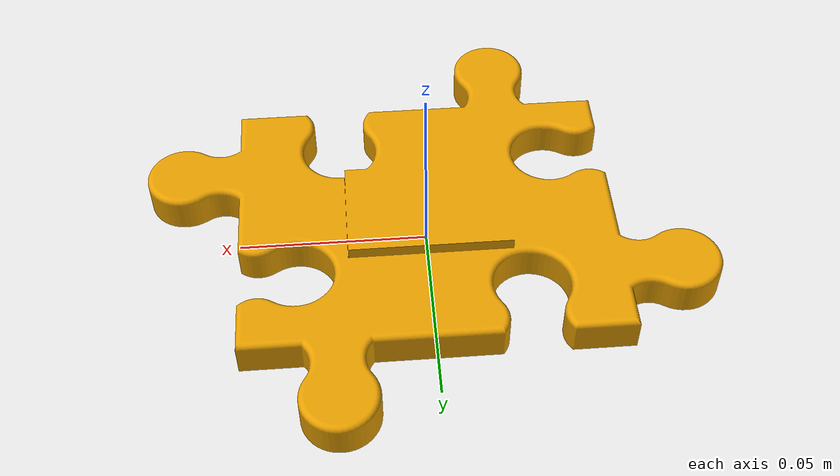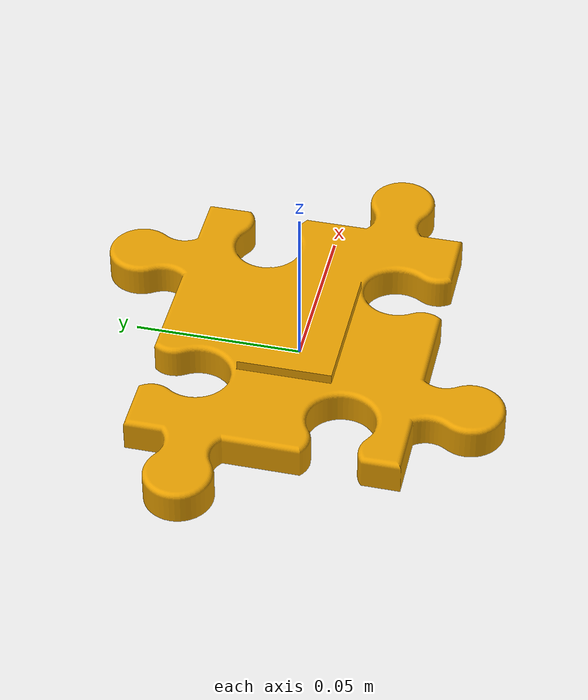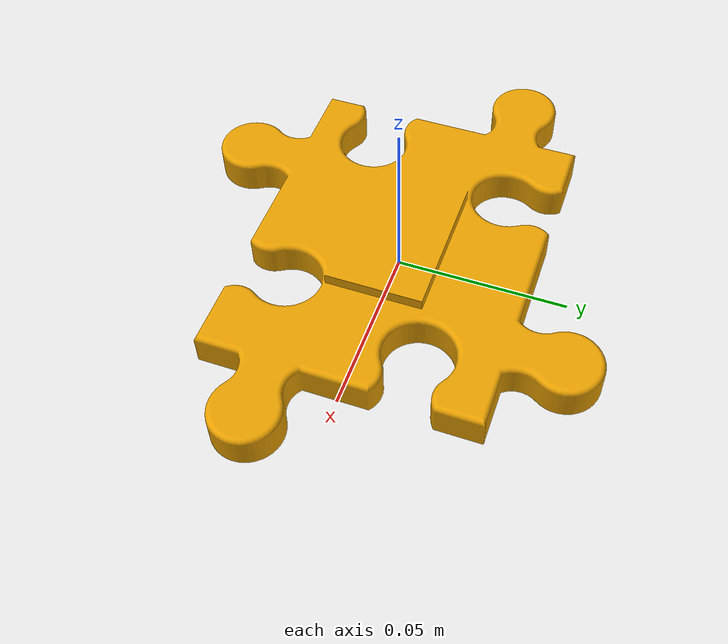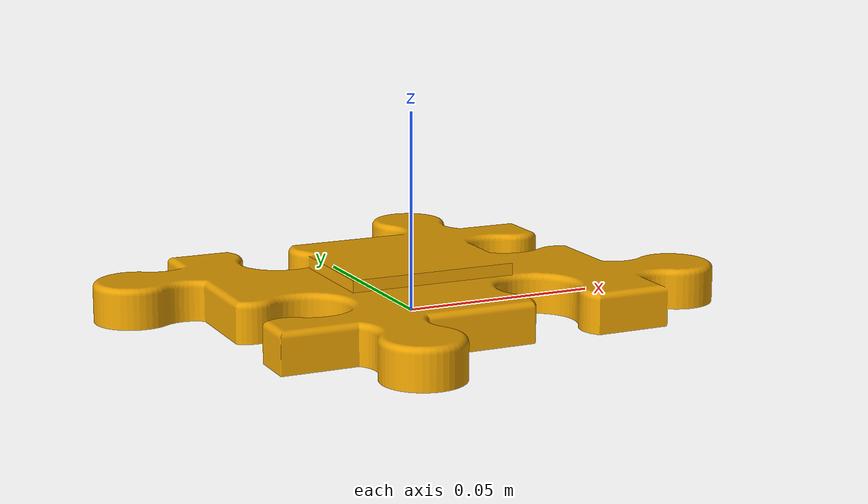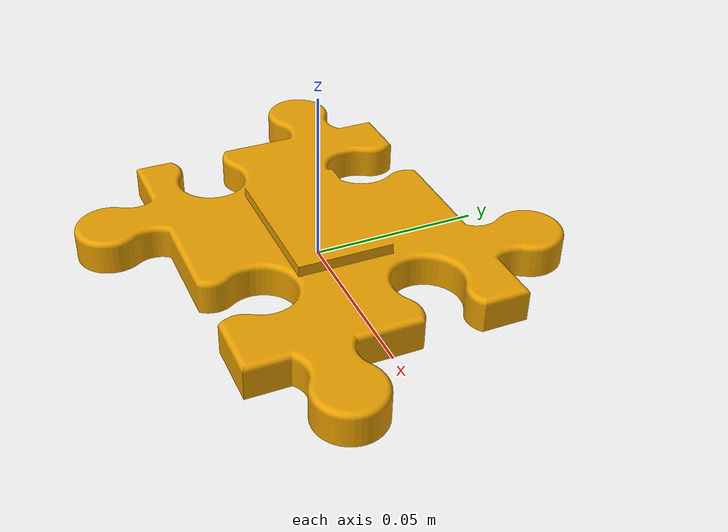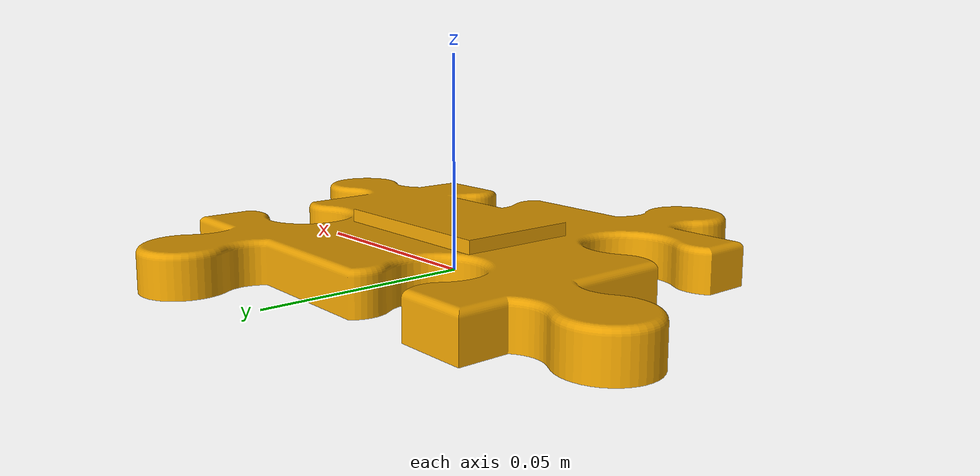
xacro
<?xml version="1.0"?>
<robot xmlns:xacro="http://www.ros.org/wiki/xacro" name="target_object">

    <xacro:arg name="mesh_path" default="package://motomini/meshes/puzzel_mount.stl" />
    <xacro:arg name="gravity_off" default="true" />
    <xacro:arg name="mesh_scale" default="1.0" />

    <link name="object_link">
        <visual>
            <origin xyz="0 0 0" rpy="0 0 0" />
            <geometry>
                <mesh filename="$(arg mesh_path)"
                    scale="$(arg mesh_scale) $(arg mesh_scale) $(arg mesh_scale)" />
            </geometry>
        </visual>
        <collision>
            <origin xyz="0 0 0" rpy="0 0 0" />
            <geometry>
                <mesh filename="$(arg mesh_path)"
                    scale="$(arg mesh_scale) $(arg mesh_scale) $(arg mesh_scale)" />
            </geometry>
        </collision>
        <inertial>
            <mass value="0.1" />
            <origin xyz="0 0 0" rpy="0 0 0" />
            <inertia ixx="0.0001" ixy="0.0" ixz="0.0" iyy="0.0001" iyz="0.0" izz="0.0001" />
        </inertial>
    </link>

    <gazebo reference="object_link">
        <turnGravityOff>$(arg gravity_off)</turnGravityOff>
        <mu1>1.0</mu1>
        <mu2>1.0</mu2>
    </gazebo>

    <gazebo>
        <plugin
            filename="ignition-gazebo-pose-publisher-system"
            name="ignition::gazebo::systems::PosePublisher">

            <publish_link_pose>false</publish_link_pose>
            <publish_visual_pose>false</publish_visual_pose>
            <publish_collision_pose>false</publish_collision_pose>

            <publish_model_pose>true</publish_model_pose>
            <publish_nested_model_pose>false</publish_nested_model_pose>

            <use_pose_vector_msg>false</use_pose_vector_msg>

            <update_frequency>30</update_frequency>
        </plugin>
    </gazebo>

</robot>
